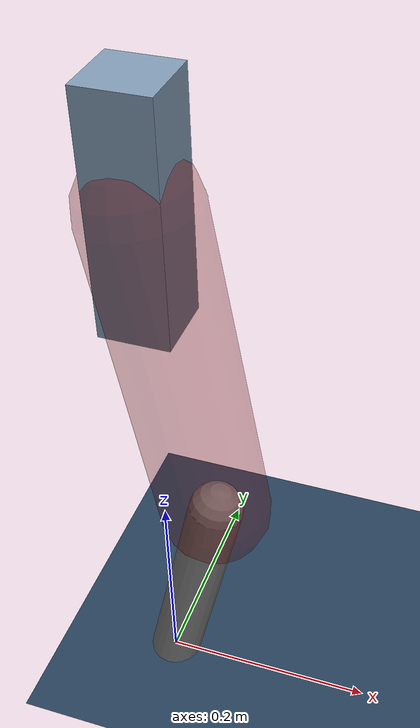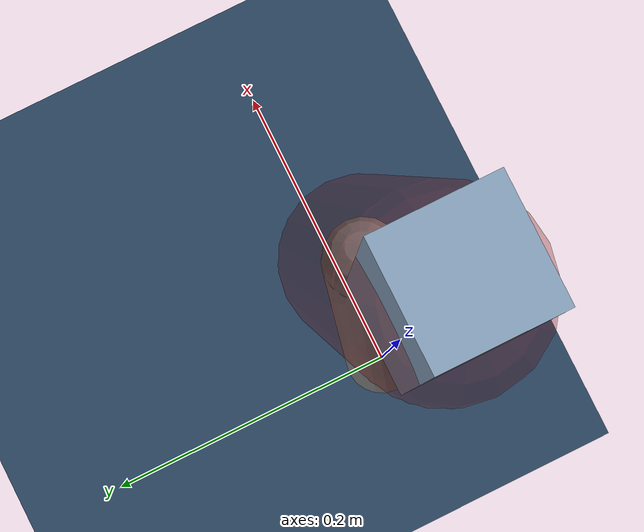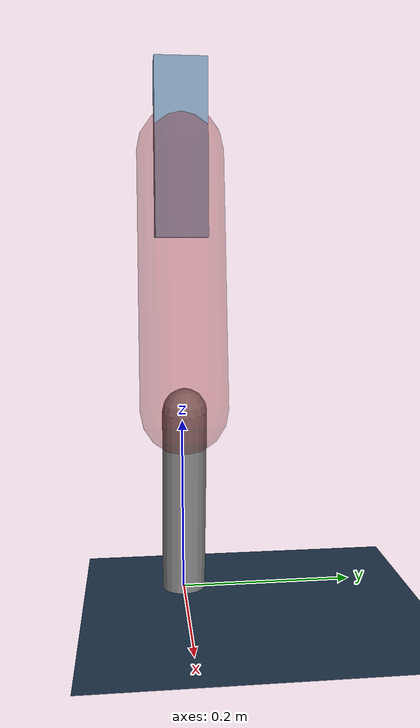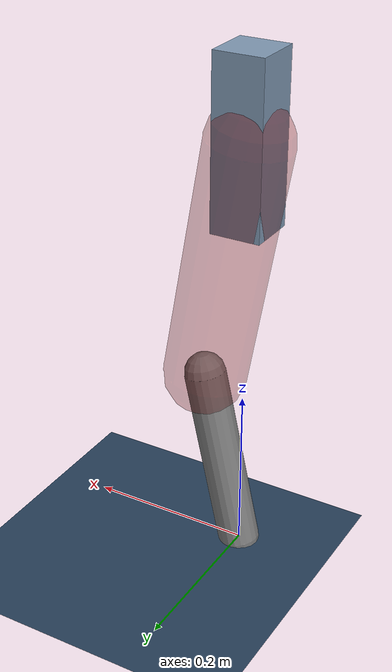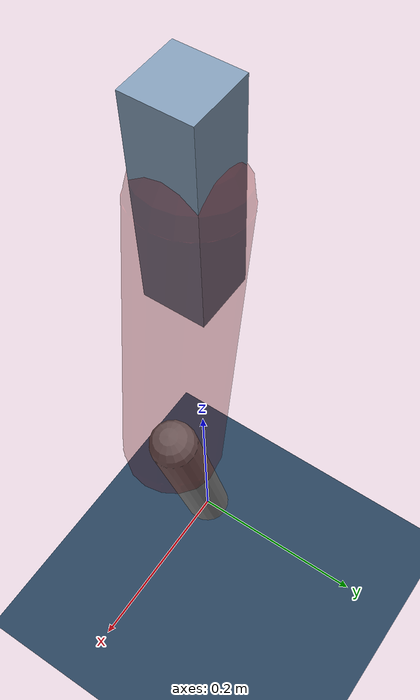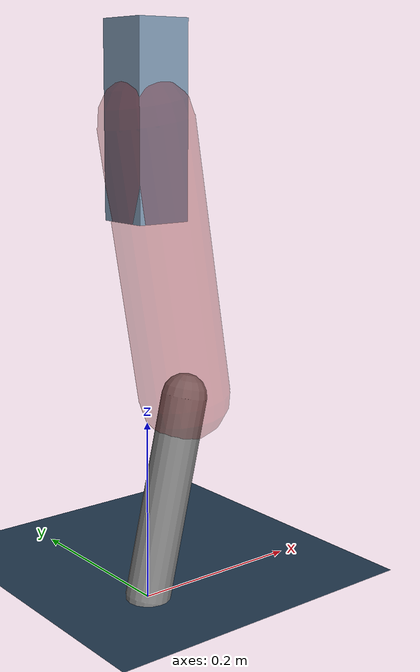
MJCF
<mujoco model="Hopper2D">
	<compiler inertiafromgeom="true" angle="radian" />
	<option timestep="0.001" integrator="implicit" cone="elliptic" solver="Newton" tolerance="1e-10" />

	<default>
		<geom contype="1" conaffinity="1" condim="3" friction="2 0.005 0.0001" solref="0.005 1" />
		<joint limited="true" damping="0.1" />
	</default>

	<asset>
		<texture name="skybox" type="skybox" builtin="gradient" rgb1=".4 .6 .8" rgb2="0 0 0" width="800" height="800" />
		<texture name="grid" type="2d" builtin="checker" rgb1=".1 .2 .3" rgb2=".2 .3 .4" width="300" height="300" mark="edge" markrgb=".2 .3 .4" />
		<material name="ground" texture="grid" texrepeat="1 1" texuniform="true" reflectance="0.1" />
		<material name="leg" rgba="0.5 0.6 0.7 1" />
	</asset>

	<worldbody>

		<geom name="floor" type="plane" size="5 5 0.25" material="ground" />

		<light directional="false" diffuse="0.8 0.8 0.8" specular="0.3 0.3 0.3" pos="0 0 2" dir="0 0 -1" />
		<light mode="targetbodycom" target="base" directional="false" diffuse="0.8 0.8 0.8" specular="0.3 0.3 0.3" pos="0 0 2" dir="0 0 -1" />

		<camera name="fixed" pos="0 -2 1" xyaxes="1 0 0 0 0 1" />
		<camera name="tracking" mode="trackcom" pos="0 -3 1" />

		<body name="root" pos="0 0 0.5150351495022061">
			<joint name="slide_x" type="slide" axis="1 0 0" range="-100 100" />
			<joint name="slide_z" type="slide" axis="0 0 1" range="0 10" />

			<body name="base" pos="0 0 0">
				<geom name="torso" type="box" size="0.03 0.03 0.1" mass="2.217" material="leg" />

				<body name="link1" pos="0 0 0" euler="0 1.4006172335229146 0">
					<joint type="hinge" axis="0 -1 0" pos="0 0 0" name="hinge1" limited="true" range="-3.14 3.14" stiffness="0" damping="0.1" />
					<geom name="thigh" type="capsule" fromto="0 0 0 0.29818588822755165 0 0" size="0.05" rgba="0.5 0 0 0.3" mass="0.9838018982143895" />

					<body name="link2" pos="0.29818588822755165 0 0" euler="0 0.3946767421612358 0">
						<joint type="hinge" axis="0 -1 0" pos="0 0 0" name="hinge2" limited="true" range="-3.14 3.14" stiffness="0" damping="0.1" />
						<geom name="shank" type="capsule" fromto="0 0 0 0.22684926127465446 0 0" size="0.025" mass="0.42337940901972354" />

					</body>
				</body>
			</body>
		</body>
	</worldbody>

	<actuator>
		<motor name="torque1" joint="hinge1" ctrlrange="-69.21394437955698 69.21394437955698" ctrllimited="true" gear="1" />
		<motor name="torque2" joint="hinge2" ctrlrange="-91.86194461076201 91.86194461076201" ctrllimited="true" gear="1" />
	</actuator>
</mujoco>
